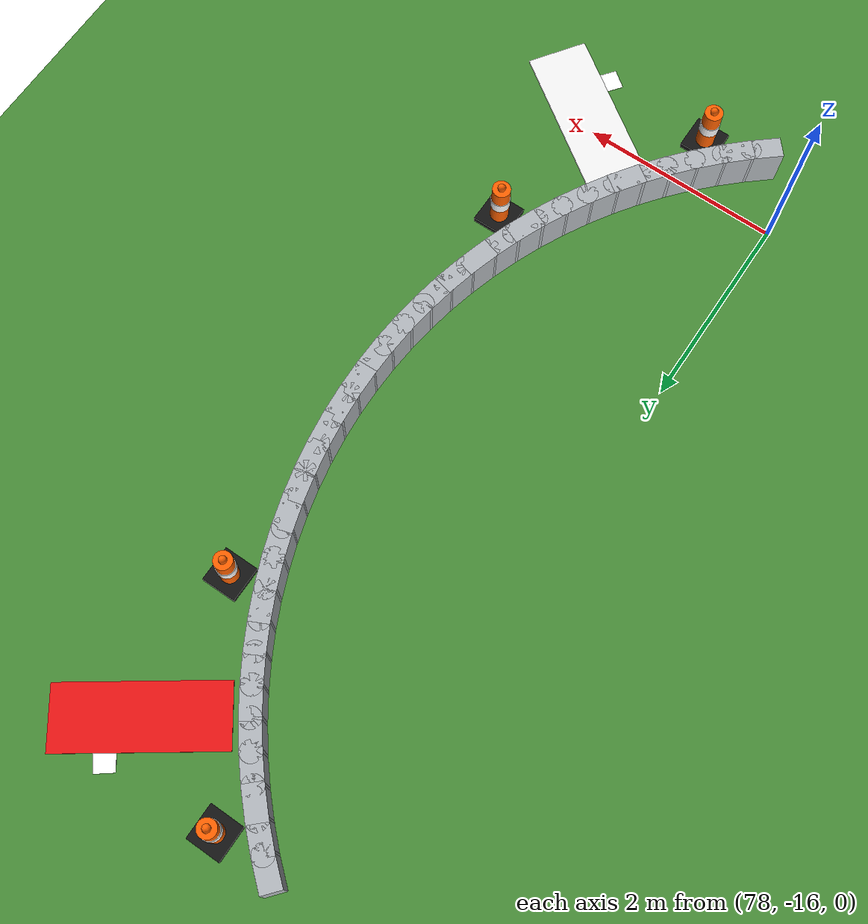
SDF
<sdf version="1.6">
 <world name="sem_silesia_ring_2026">
  <model name="ground_plane">
   <static>true</static>
   <link name="link">
    <collision name="collision">
     <geometry><plane><normal>0 0 1</normal><size>600 600</size></plane></geometry>
     <surface><friction><ode><mu>0.6</mu><mu2>0.6</mu2></ode></friction></surface>
    </collision>
    <visual name="visual">
     <geometry><plane><normal>0 0 1</normal><size>600 600</size></plane></geometry>
     <material><ambient>0.28 0.55 0.22 1</ambient><diffuse>0.28 0.55 0.22 1</diffuse></material>
    </visual>
   </link>
  </model>
  <model name="wl_Ri_s17">
   <static>true</static>
   <pose>80.2361 -16.5178 0.0050 0 0 0.9163</pose>
   <link name="link">
    <visual name="v">
     <geometry><box><size>0.4008 0.2000 0.0040</size></box></geometry>
     <material><ambient>1 1 1 1</ambient><diffuse>1 1 1 1</diffuse></material>
    </visual>
    <collision name="c">
     <geometry><box><size>0.4008 0.2000 0.0040</size></box></geometry>
     <surface><friction><ode><mu>0.9</mu><mu2>0.9</mu2></ode></friction></surface>
    </collision>
   </link>
  </model>
  <model name="wl_Ri_jnt18">
   <static>true</static>
   <pose>80.3395 -16.3794 0.0050 0 0 0</pose>
   <link name="link">
    <visual name="v">
     <geometry><cylinder><radius>0.1000</radius><length>0.0040</length></cylinder></geometry>
     <material><ambient>1 1 1 1</ambient><diffuse>1 1 1 1</diffuse></material>
    </visual>
    <collision name="c">
     <geometry><cylinder><radius>0.1000</radius><length>0.0040</length></cylinder></geometry>
     <surface><friction><ode><mu>0.9</mu><mu2>0.9</mu2></ode></friction></surface>
    </collision>
   </link>
  </model>
  <model name="wl_Ri_s18">
   <static>true</static>
   <pose>80.4392 -16.2383 0.0050 0 0 0.9687</pose>
   <link name="link">
    <visual name="v">
     <geometry><box><size>0.4008 0.2000 0.0040</size></box></geometry>
     <material><ambient>1 1 1 1</ambient><diffuse>1 1 1 1</diffuse></material>
    </visual>
    <collision name="c">
     <geometry><box><size>0.4008 0.2000 0.0040</size></box></geometry>
     <surface><friction><ode><mu>0.9</mu><mu2>0.9</mu2></ode></friction></surface>
    </collision>
   </link>
  </model>
  <model name="wl_Ri_jnt42">
   <static>true</static>
   <pose>80.3395 -8.6206 0.0050 0 0 0</pose>
   <link name="link">
    <visual name="v">
     <geometry><cylinder><radius>0.1000</radius><length>0.0040</length></cylinder></geometry>
     <material><ambient>1 1 1 1</ambient><diffuse>1 1 1 1</diffuse></material>
    </visual>
    <collision name="c">
     <geometry><cylinder><radius>0.1000</radius><length>0.0040</length></cylinder></geometry>
     <surface><friction><ode><mu>0.9</mu><mu2>0.9</mu2></ode></friction></surface>
    </collision>
   </link>
  </model>
  <model name="wl_Ri_s42">
   <static>true</static>
   <pose>80.2361 -8.4822 0.0050 0 0 2.2253</pose>
   <link name="link">
    <visual name="v">
     <geometry><box><size>0.4008 0.2000 0.0040</size></box></geometry>
     <material><ambient>1 1 1 1</ambient><diffuse>1 1 1 1</diffuse></material>
    </visual>
    <collision name="c">
     <geometry><box><size>0.4008 0.2000 0.0040</size></box></geometry>
     <surface><friction><ode><mu>0.9</mu><mu2>0.9</mu2></ode></friction></surface>
    </collision>
   </link>
  </model>
  <model name="kR_in_k3">
   <static>true</static>
   <pose>80.1543 -16.1225 0.0120 0 0 0.9582</pose>
   <link name="link">
    <visual name="v">
     <geometry><box><size>0.6135 1.6000 0.0120</size></box></geometry>
     <material><ambient>0.96 0.96 0.96 1</ambient><diffuse>0.96 0.96 0.96 1</diffuse></material>
    </visual>
    <collision name="c">
     <geometry><box><size>0.6135 1.6000 0.0120</size></box></geometry>
     <surface><friction><ode><mu>0.9</mu><mu2>0.9</mu2></ode></friction></surface>
    </collision>
   </link>
  </model>
  <model name="kR_in_k16">
   <static>true</static>
   <pose>80.1543 -8.8775 0.0120 0 0 2.1834</pose>
   <link name="link">
    <visual name="v">
     <geometry><box><size>0.6135 1.6000 0.0120</size></box></geometry>
     <material><ambient>0.92 0.08 0.08 1</ambient><diffuse>0.92 0.08 0.08 1</diffuse></material>
    </visual>
    <collision name="c">
     <geometry><box><size>0.6135 1.6000 0.0120</size></box></geometry>
     <surface><friction><ode><mu>0.9</mu><mu2>0.9</mu2></ode></friction></surface>
    </collision>
   </link>
  </model>
  <model name="arm_Ri_s13">
   <static>true</static>
   <pose>78.4421 -16.5302 0.2250 0 0 0.7069</pose>
   <link name="link">
    <visual name="v">
     <geometry><box><size>0.3327 0.2000 0.4500</size></box></geometry>
     <material><ambient>0.70 0.72 0.74 1</ambient><diffuse>0.70 0.72 0.74 1</diffuse></material>
    </visual>
    <collision name="c">
     <geometry><box><size>0.3327 0.2000 0.4500</size></box></geometry>
     <surface><friction><ode><mu>0.9</mu><mu2>0.9</mu2></ode></friction></surface>
    </collision>
   </link>
  </model>
  <model name="arm_Ri_jnt14">
   <static>true</static>
   <pose>78.5464 -16.4387 0.2250 0 0 0</pose>
   <link name="link">
    <visual name="v">
     <geometry><cylinder><radius>0.1000</radius><length>0.4500</length></cylinder></geometry>
     <material><ambient>0.70 0.72 0.74 1</ambient><diffuse>0.70 0.72 0.74 1</diffuse></material>
    </visual>
    <collision name="c">
     <geometry><cylinder><radius>0.1000</radius><length>0.4500</length></cylinder></geometry>
     <surface><friction><ode><mu>0.9</mu><mu2>0.9</mu2></ode></friction></surface>
    </collision>
   </link>
  </model>
  <model name="arm_Ri_s14">
   <static>true</static>
   <pose>78.6483 -16.3445 0.2250 0 0 0.7592</pose>
   <link name="link">
    <visual name="v">
     <geometry><box><size>0.3327 0.2000 0.4500</size></box></geometry>
     <material><ambient>0.70 0.72 0.74 1</ambient><diffuse>0.70 0.72 0.74 1</diffuse></material>
    </visual>
    <collision name="c">
     <geometry><box><size>0.3327 0.2000 0.4500</size></box></geometry>
     <surface><friction><ode><mu>0.9</mu><mu2>0.9</mu2></ode></friction></surface>
    </collision>
   </link>
  </model>
  <model name="arm_Ri_jnt15">
   <static>true</static>
   <pose>78.7477 -16.2477 0.2250 0 0 0</pose>
   <link name="link">
    <visual name="v">
     <geometry><cylinder><radius>0.1000</radius><length>0.4500</length></cylinder></geometry>
     <material><ambient>0.70 0.72 0.74 1</ambient><diffuse>0.70 0.72 0.74 1</diffuse></material>
    </visual>
    <collision name="c">
     <geometry><cylinder><radius>0.1000</radius><length>0.4500</length></cylinder></geometry>
     <surface><friction><ode><mu>0.9</mu><mu2>0.9</mu2></ode></friction></surface>
    </collision>
   </link>
  </model>
  <model name="arm_Ri_s15">
   <static>true</static>
   <pose>78.8445 -16.1483 0.2250 0 0 0.8116</pose>
   <link name="link">
    <visual name="v">
     <geometry><box><size>0.3327 0.2000 0.4500</size></box></geometry>
     <material><ambient>0.70 0.72 0.74 1</ambient><diffuse>0.70 0.72 0.74 1</diffuse></material>
    </visual>
    <collision name="c">
     <geometry><box><size>0.3327 0.2000 0.4500</size></box></geometry>
     <surface><friction><ode><mu>0.9</mu><mu2>0.9</mu2></ode></friction></surface>
    </collision>
   </link>
  </model>
  <model name="arm_Ri_jnt16">
   <static>true</static>
   <pose>78.9387 -16.0464 0.2250 0 0 0</pose>
   <link name="link">
    <visual name="v">
     <geometry><cylinder><radius>0.1000</radius><length>0.4500</length></cylinder></geometry>
     <material><ambient>0.70 0.72 0.74 1</ambient><diffuse>0.70 0.72 0.74 1</diffuse></material>
    </visual>
    <collision name="c">
     <geometry><cylinder><radius>0.1000</radius><length>0.4500</length></cylinder></geometry>
     <surface><friction><ode><mu>0.9</mu><mu2>0.9</mu2></ode></friction></surface>
    </collision>
   </link>
  </model>
  <model name="arm_Ri_s16">
   <static>true</static>
   <pose>79.0302 -15.9421 0.2250 0 0 0.8639</pose>
   <link name="link">
    <visual name="v">
     <geometry><box><size>0.3327 0.2000 0.4500</size></box></geometry>
     <material><ambient>0.70 0.72 0.74 1</ambient><diffuse>0.70 0.72 0.74 1</diffuse></material>
    </visual>
    <collision name="c">
     <geometry><box><size>0.3327 0.2000 0.4500</size></box></geometry>
     <surface><friction><ode><mu>0.9</mu><mu2>0.9</mu2></ode></friction></surface>
    </collision>
   </link>
  </model>
  <model name="arm_Ri_jnt17">
   <static>true</static>
   <pose>79.1189 -15.8354 0.2250 0 0 0</pose>
   <link name="link">
    <visual name="v">
     <geometry><cylinder><radius>0.1000</radius><length>0.4500</length></cylinder></geometry>
     <material><ambient>0.70 0.72 0.74 1</ambient><diffuse>0.70 0.72 0.74 1</diffuse></material>
    </visual>
    <collision name="c">
     <geometry><cylinder><radius>0.1000</radius><length>0.4500</length></cylinder></geometry>
     <surface><friction><ode><mu>0.9</mu><mu2>0.9</mu2></ode></friction></surface>
    </collision>
   </link>
  </model>
  <model name="arm_Ri_s17">
   <static>true</static>
   <pose>79.2048 -15.7264 0.2250 0 0 0.9163</pose>
   <link name="link">
    <visual name="v">
     <geometry><box><size>0.3327 0.2000 0.4500</size></box></geometry>
     <material><ambient>0.70 0.72 0.74 1</ambient><diffuse>0.70 0.72 0.74 1</diffuse></material>
    </visual>
    <collision name="c">
     <geometry><box><size>0.3327 0.2000 0.4500</size></box></geometry>
     <surface><friction><ode><mu>0.9</mu><mu2>0.9</mu2></ode></friction></surface>
    </collision>
   </link>
  </model>
  <model name="arm_Ri_jnt18">
   <static>true</static>
   <pose>79.2878 -15.6153 0.2250 0 0 0</pose>
   <link name="link">
    <visual name="v">
     <geometry><cylinder><radius>0.1000</radius><length>0.4500</length></cylinder></geometry>
     <material><ambient>0.70 0.72 0.74 1</ambient><diffuse>0.70 0.72 0.74 1</diffuse></material>
    </visual>
    <collision name="c">
     <geometry><cylinder><radius>0.1000</radius><length>0.4500</length></cylinder></geometry>
     <surface><friction><ode><mu>0.9</mu><mu2>0.9</mu2></ode></friction></surface>
    </collision>
   </link>
  </model>
  <model name="arm_Ri_s18">
   <static>true</static>
   <pose>79.3679 -15.5020 0.2250 0 0 0.9687</pose>
   <link name="link">
    <visual name="v">
     <geometry><box><size>0.3327 0.2000 0.4500</size></box></geometry>
     <material><ambient>0.70 0.72 0.74 1</ambient><diffuse>0.70 0.72 0.74 1</diffuse></material>
    </visual>
    <collision name="c">
     <geometry><box><size>0.3327 0.2000 0.4500</size></box></geometry>
     <surface><friction><ode><mu>0.9</mu><mu2>0.9</mu2></ode></friction></surface>
    </collision>
   </link>
  </model>
  <model name="arm_Ri_jnt19">
   <static>true</static>
   <pose>79.4450 -15.3866 0.2250 0 0 0</pose>
   <link name="link">
    <visual name="v">
     <geometry><cylinder><radius>0.1000</radius><length>0.4500</length></cylinder></geometry>
     <material><ambient>0.70 0.72 0.74 1</ambient><diffuse>0.70 0.72 0.74 1</diffuse></material>
    </visual>
    <collision name="c">
     <geometry><cylinder><radius>0.1000</radius><length>0.4500</length></cylinder></geometry>
     <surface><friction><ode><mu>0.9</mu><mu2>0.9</mu2></ode></friction></surface>
    </collision>
   </link>
  </model>
  <model name="arm_Ri_s19">
   <static>true</static>
   <pose>79.5190 -15.2692 0.2250 0 0 1.0210</pose>
   <link name="link">
    <visual name="v">
     <geometry><box><size>0.3327 0.2000 0.4500</size></box></geometry>
     <material><ambient>0.70 0.72 0.74 1</ambient><diffuse>0.70 0.72 0.74 1</diffuse></material>
    </visual>
    <collision name="c">
     <geometry><box><size>0.3327 0.2000 0.4500</size></box></geometry>
     <surface><friction><ode><mu>0.9</mu><mu2>0.9</mu2></ode></friction></surface>
    </collision>
   </link>
  </model>
  <model name="arm_Ri_jnt20">
   <static>true</static>
   <pose>79.5899 -15.1500 0.2250 0 0 0</pose>
   <link name="link">
    <visual name="v">
     <geometry><cylinder><radius>0.1000</radius><length>0.4500</length></cylinder></geometry>
     <material><ambient>0.70 0.72 0.74 1</ambient><diffuse>0.70 0.72 0.74 1</diffuse></material>
    </visual>
    <collision name="c">
     <geometry><cylinder><radius>0.1000</radius><length>0.4500</length></cylinder></geometry>
     <surface><friction><ode><mu>0.9</mu><mu2>0.9</mu2></ode></friction></surface>
    </collision>
   </link>
  </model>
  <model name="arm_Ri_s20">
   <static>true</static>
   <pose>79.6577 -15.0289 0.2250 0 0 1.0734</pose>
   <link name="link">
    <visual name="v">
     <geometry><box><size>0.3327 0.2000 0.4500</size></box></geometry>
     <material><ambient>0.70 0.72 0.74 1</ambient><diffuse>0.70 0.72 0.74 1</diffuse></material>
    </visual>
    <collision name="c">
     <geometry><box><size>0.3327 0.2000 0.4500</size></box></geometry>
     <surface><friction><ode><mu>0.9</mu><mu2>0.9</mu2></ode></friction></surface>
    </collision>
   </link>
  </model>
  <model name="arm_Ri_jnt21">
   <static>true</static>
   <pose>79.7223 -14.9061 0.2250 0 0 0</pose>
   <link name="link">
    <visual name="v">
     <geometry><cylinder><radius>0.1000</radius><length>0.4500</length></cylinder></geometry>
     <material><ambient>0.70 0.72 0.74 1</ambient><diffuse>0.70 0.72 0.74 1</diffuse></material>
    </visual>
    <collision name="c">
     <geometry><cylinder><radius>0.1000</radius><length>0.4500</length></cylinder></geometry>
     <surface><friction><ode><mu>0.9</mu><mu2>0.9</mu2></ode></friction></surface>
    </collision>
   </link>
  </model>
  <model name="arm_Ri_s21">
   <static>true</static>
   <pose>79.7837 -14.7817 0.2250 0 0 1.1257</pose>
   <link name="link">
    <visual name="v">
     <geometry><box><size>0.3327 0.2000 0.4500</size></box></geometry>
     <material><ambient>0.70 0.72 0.74 1</ambient><diffuse>0.70 0.72 0.74 1</diffuse></material>
    </visual>
    <collision name="c">
     <geometry><box><size>0.3327 0.2000 0.4500</size></box></geometry>
     <surface><friction><ode><mu>0.9</mu><mu2>0.9</mu2></ode></friction></surface>
    </collision>
   </link>
  </model>
  <model name="arm_Ri_jnt22">
   <static>true</static>
   <pose>79.8418 -14.6557 0.2250 0 0 0</pose>
   <link name="link">
    <visual name="v">
     <geometry><cylinder><radius>0.1000</radius><length>0.4500</length></cylinder></geometry>
     <material><ambient>0.70 0.72 0.74 1</ambient><diffuse>0.70 0.72 0.74 1</diffuse></material>
    </visual>
    <collision name="c">
     <geometry><cylinder><radius>0.1000</radius><length>0.4500</length></cylinder></geometry>
     <surface><friction><ode><mu>0.9</mu><mu2>0.9</mu2></ode></friction></surface>
    </collision>
   </link>
  </model>
  <model name="arm_Ri_s22">
   <static>true</static>
   <pose>79.8966 -14.5282 0.2250 0 0 1.1781</pose>
   <link name="link">
    <visual name="v">
     <geometry><box><size>0.3327 0.2000 0.4500</size></box></geometry>
     <material><ambient>0.70 0.72 0.74 1</ambient><diffuse>0.70 0.72 0.74 1</diffuse></material>
    </visual>
    <collision name="c">
     <geometry><box><size>0.3327 0.2000 0.4500</size></box></geometry>
     <surface><friction><ode><mu>0.9</mu><mu2>0.9</mu2></ode></friction></surface>
    </collision>
   </link>
  </model>
  <model name="arm_Ri_jnt23">
   <static>true</static>
   <pose>79.9480 -14.3994 0.2250 0 0 0</pose>
   <link name="link">
    <visual name="v">
     <geometry><cylinder><radius>0.1000</radius><length>0.4500</length></cylinder></geometry>
     <material><ambient>0.70 0.72 0.74 1</ambient><diffuse>0.70 0.72 0.74 1</diffuse></material>
    </visual>
    <collision name="c">
     <geometry><cylinder><radius>0.1000</radius><length>0.4500</length></cylinder></geometry>
     <surface><friction><ode><mu>0.9</mu><mu2>0.9</mu2></ode></friction></surface>
    </collision>
   </link>
  </model>
  <model name="arm_Ri_s23">
   <static>true</static>
   <pose>79.9960 -14.2692 0.2250 0 0 1.2305</pose>
   <link name="link">
    <visual name="v">
     <geometry><box><size>0.3327 0.2000 0.4500</size></box></geometry>
     <material><ambient>0.70 0.72 0.74 1</ambient><diffuse>0.70 0.72 0.74 1</diffuse></material>
    </visual>
    <collision name="c">
     <geometry><box><size>0.3327 0.2000 0.4500</size></box></geometry>
     <surface><friction><ode><mu>0.9</mu><mu2>0.9</mu2></ode></friction></surface>
    </collision>
   </link>
  </model>
  <model name="arm_Ri_jnt24">
   <static>true</static>
   <pose>80.0406 -14.1378 0.2250 0 0 0</pose>
   <link name="link">
    <visual name="v">
     <geometry><cylinder><radius>0.1000</radius><length>0.4500</length></cylinder></geometry>
     <material><ambient>0.70 0.72 0.74 1</ambient><diffuse>0.70 0.72 0.74 1</diffuse></material>
    </visual>
    <collision name="c">
     <geometry><cylinder><radius>0.1000</radius><length>0.4500</length></cylinder></geometry>
     <surface><friction><ode><mu>0.9</mu><mu2>0.9</mu2></ode></friction></surface>
    </collision>
   </link>
  </model>
  <model name="arm_Ri_s24">
   <static>true</static>
   <pose>80.0817 -14.0053 0.2250 0 0 1.2828</pose>
   <link name="link">
    <visual name="v">
     <geometry><box><size>0.3327 0.2000 0.4500</size></box></geometry>
     <material><ambient>0.70 0.72 0.74 1</ambient><diffuse>0.70 0.72 0.74 1</diffuse></material>
    </visual>
    <collision name="c">
     <geometry><box><size>0.3327 0.2000 0.4500</size></box></geometry>
     <surface><friction><ode><mu>0.9</mu><mu2>0.9</mu2></ode></friction></surface>
    </collision>
   </link>
  </model>
  <model name="arm_Ri_jnt25">
   <static>true</static>
   <pose>80.1194 -13.8717 0.2250 0 0 0</pose>
   <link name="link">
    <visual name="v">
     <geometry><cylinder><radius>0.1000</radius><length>0.4500</length></cylinder></geometry>
     <material><ambient>0.70 0.72 0.74 1</ambient><diffuse>0.70 0.72 0.74 1</diffuse></material>
    </visual>
    <collision name="c">
     <geometry><cylinder><radius>0.1000</radius><length>0.4500</length></cylinder></geometry>
     <surface><friction><ode><mu>0.9</mu><mu2>0.9</mu2></ode></friction></surface>
    </collision>
   </link>
  </model>
  <model name="arm_Ri_s25">
   <static>true</static>
   <pose>80.1536 -13.7373 0.2250 0 0 1.3352</pose>
   <link name="link">
    <visual name="v">
     <geometry><box><size>0.3327 0.2000 0.4500</size></box></geometry>
     <material><ambient>0.70 0.72 0.74 1</ambient><diffuse>0.70 0.72 0.74 1</diffuse></material>
    </visual>
    <collision name="c">
     <geometry><box><size>0.3327 0.2000 0.4500</size></box></geometry>
     <surface><friction><ode><mu>0.9</mu><mu2>0.9</mu2></ode></friction></surface>
    </collision>
   </link>
  </model>
  <model name="arm_Ri_jnt26">
   <static>true</static>
   <pose>80.1842 -13.6019 0.2250 0 0 0</pose>
   <link name="link">
    <visual name="v">
     <geometry><cylinder><radius>0.1000</radius><length>0.4500</length></cylinder></geometry>
     <material><ambient>0.70 0.72 0.74 1</ambient><diffuse>0.70 0.72 0.74 1</diffuse></material>
    </visual>
    <collision name="c">
     <geometry><cylinder><radius>0.1000</radius><length>0.4500</length></cylinder></geometry>
     <surface><friction><ode><mu>0.9</mu><mu2>0.9</mu2></ode></friction></surface>
    </collision>
   </link>
  </model>
  <model name="arm_Ri_s26">
   <static>true</static>
   <pose>80.2113 -13.4658 0.2250 0 0 1.3875</pose>
   <link name="link">
    <visual name="v">
     <geometry><box><size>0.3327 0.2000 0.4500</size></box></geometry>
     <material><ambient>0.70 0.72 0.74 1</ambient><diffuse>0.70 0.72 0.74 1</diffuse></material>
    </visual>
    <collision name="c">
     <geometry><box><size>0.3327 0.2000 0.4500</size></box></geometry>
     <surface><friction><ode><mu>0.9</mu><mu2>0.9</mu2></ode></friction></surface>
    </collision>
   </link>
  </model>
  <model name="arm_Ri_jnt27">
   <static>true</static>
   <pose>80.2347 -13.3291 0.2250 0 0 0</pose>
   <link name="link">
    <visual name="v">
     <geometry><cylinder><radius>0.1000</radius><length>0.4500</length></cylinder></geometry>
     <material><ambient>0.70 0.72 0.74 1</ambient><diffuse>0.70 0.72 0.74 1</diffuse></material>
    </visual>
    <collision name="c">
     <geometry><cylinder><radius>0.1000</radius><length>0.4500</length></cylinder></geometry>
     <surface><friction><ode><mu>0.9</mu><mu2>0.9</mu2></ode></friction></surface>
    </collision>
   </link>
  </model>
  <model name="arm_Ri_s27">
   <static>true</static>
   <pose>80.2547 -13.1918 0.2250 0 0 1.4399</pose>
   <link name="link">
    <visual name="v">
     <geometry><box><size>0.3327 0.2000 0.4500</size></box></geometry>
     <material><ambient>0.70 0.72 0.74 1</ambient><diffuse>0.70 0.72 0.74 1</diffuse></material>
    </visual>
    <collision name="c">
     <geometry><box><size>0.3327 0.2000 0.4500</size></box></geometry>
     <surface><friction><ode><mu>0.9</mu><mu2>0.9</mu2></ode></friction></surface>
    </collision>
   </link>
  </model>
  <model name="arm_Ri_jnt28">
   <static>true</static>
   <pose>80.2710 -13.0540 0.2250 0 0 0</pose>
   <link name="link">
    <visual name="v">
     <geometry><cylinder><radius>0.1000</radius><length>0.4500</length></cylinder></geometry>
     <material><ambient>0.70 0.72 0.74 1</ambient><diffuse>0.70 0.72 0.74 1</diffuse></material>
    </visual>
    <collision name="c">
     <geometry><cylinder><radius>0.1000</radius><length>0.4500</length></cylinder></geometry>
     <surface><friction><ode><mu>0.9</mu><mu2>0.9</mu2></ode></friction></surface>
    </collision>
   </link>
  </model>
  <model name="arm_Ri_s28">
   <static>true</static>
   <pose>80.2837 -12.9158 0.2250 0 0 1.4923</pose>
   <link name="link">
    <visual name="v">
     <geometry><box><size>0.3327 0.2000 0.4500</size></box></geometry>
     <material><ambient>0.70 0.72 0.74 1</ambient><diffuse>0.70 0.72 0.74 1</diffuse></material>
    </visual>
    <collision name="c">
     <geometry><box><size>0.3327 0.2000 0.4500</size></box></geometry>
     <surface><friction><ode><mu>0.9</mu><mu2>0.9</mu2></ode></friction></surface>
    </collision>
   </link>
  </model>
  <model name="arm_Ri_jnt29">
   <static>true</static>
   <pose>80.2927 -12.7774 0.2250 0 0 0</pose>
   <link name="link">
    <visual name="v">
     <geometry><cylinder><radius>0.1000</radius><length>0.4500</length></cylinder></geometry>
     <material><ambient>0.70 0.72 0.74 1</ambient><diffuse>0.70 0.72 0.74 1</diffuse></material>
    </visual>
    <collision name="c">
     <geometry><cylinder><radius>0.1000</radius><length>0.4500</length></cylinder></geometry>
     <surface><friction><ode><mu>0.9</mu><mu2>0.9</mu2></ode></friction></surface>
    </collision>
   </link>
  </model>
  <model name="arm_Ri_s29">
   <static>true</static>
   <pose>80.2982 -12.6387 0.2250 0 0 1.5446</pose>
   <link name="link">
    <visual name="v">
     <geometry><box><size>0.3327 0.2000 0.4500</size></box></geometry>
     <material><ambient>0.70 0.72 0.74 1</ambient><diffuse>0.70 0.72 0.74 1</diffuse></material>
    </visual>
    <collision name="c">
     <geometry><box><size>0.3327 0.2000 0.4500</size></box></geometry>
     <surface><friction><ode><mu>0.9</mu><mu2>0.9</mu2></ode></friction></surface>
    </collision>
   </link>
  </model>
  <model name="arm_Ri_jnt30">
   <static>true</static>
   <pose>80.3000 -12.5000 0.2250 0 0 0</pose>
   <link name="link">
    <visual name="v">
     <geometry><cylinder><radius>0.1000</radius><length>0.4500</length></cylinder></geometry>
     <material><ambient>0.70 0.72 0.74 1</ambient><diffuse>0.70 0.72 0.74 1</diffuse></material>
    </visual>
    <collision name="c">
     <geometry><cylinder><radius>0.1000</radius><length>0.4500</length></cylinder></geometry>
     <surface><friction><ode><mu>0.9</mu><mu2>0.9</mu2></ode></friction></surface>
    </collision>
   </link>
  </model>
  <model name="arm_Ri_s30">
   <static>true</static>
   <pose>80.2982 -12.3613 0.2250 0 0 1.5970</pose>
   <link name="link">
    <visual name="v">
     <geometry><box><size>0.3327 0.2000 0.4500</size></box></geometry>
     <material><ambient>0.70 0.72 0.74 1</ambient><diffuse>0.70 0.72 0.74 1</diffuse></material>
    </visual>
    <collision name="c">
     <geometry><box><size>0.3327 0.2000 0.4500</size></box></geometry>
     <surface><friction><ode><mu>0.9</mu><mu2>0.9</mu2></ode></friction></surface>
    </collision>
   </link>
  </model>
  <model name="arm_Ri_jnt31">
   <static>true</static>
   <pose>80.2927 -12.2226 0.2250 0 0 0</pose>
   <link name="link">
    <visual name="v">
     <geometry><cylinder><radius>0.1000</radius><length>0.4500</length></cylinder></geometry>
     <material><ambient>0.70 0.72 0.74 1</ambient><diffuse>0.70 0.72 0.74 1</diffuse></material>
    </visual>
    <collision name="c">
     <geometry><cylinder><radius>0.1000</radius><length>0.4500</length></cylinder></geometry>
     <surface><friction><ode><mu>0.9</mu><mu2>0.9</mu2></ode></friction></surface>
    </collision>
   </link>
  </model>
  <model name="arm_Ri_s31">
   <static>true</static>
   <pose>80.2837 -12.0842 0.2250 0 0 1.6493</pose>
   <link name="link">
    <visual name="v">
     <geometry><box><size>0.3327 0.2000 0.4500</size></box></geometry>
     <material><ambient>0.70 0.72 0.74 1</ambient><diffuse>0.70 0.72 0.74 1</diffuse></material>
    </visual>
    <collision name="c">
     <geometry><box><size>0.3327 0.2000 0.4500</size></box></geometry>
     <surface><friction><ode><mu>0.9</mu><mu2>0.9</mu2></ode></friction></surface>
    </collision>
   </link>
  </model>
  <model name="arm_Ri_jnt32">
   <static>true</static>
   <pose>80.2710 -11.9460 0.2250 0 0 0</pose>
   <link name="link">
    <visual name="v">
     <geometry><cylinder><radius>0.1000</radius><length>0.4500</length></cylinder></geometry>
     <material><ambient>0.70 0.72 0.74 1</ambient><diffuse>0.70 0.72 0.74 1</diffuse></material>
    </visual>
    <collision name="c">
     <geometry><cylinder><radius>0.1000</radius><length>0.4500</length></cylinder></geometry>
     <surface><friction><ode><mu>0.9</mu><mu2>0.9</mu2></ode></friction></surface>
    </collision>
   </link>
  </model>
  <model name="arm_Ri_s32">
   <static>true</static>
   <pose>80.2547 -11.8082 0.2250 0 0 1.7017</pose>
   <link name="link">
    <visual name="v">
     <geometry><box><size>0.3327 0.2000 0.4500</size></box></geometry>
     <material><ambient>0.70 0.72 0.74 1</ambient><diffuse>0.70 0.72 0.74 1</diffuse></material>
    </visual>
    <collision name="c">
     <geometry><box><size>0.3327 0.2000 0.4500</size></box></geometry>
     <surface><friction><ode><mu>0.9</mu><mu2>0.9</mu2></ode></friction></surface>
    </collision>
   </link>
  </model>
  <model name="arm_Ri_jnt33">
   <static>true</static>
   <pose>80.2347 -11.6709 0.2250 0 0 0</pose>
   <link name="link">
    <visual name="v">
     <geometry><cylinder><radius>0.1000</radius><length>0.4500</length></cylinder></geometry>
     <material><ambient>0.70 0.72 0.74 1</ambient><diffuse>0.70 0.72 0.74 1</diffuse></material>
    </visual>
    <collision name="c">
     <geometry><cylinder><radius>0.1000</radius><length>0.4500</length></cylinder></geometry>
     <surface><friction><ode><mu>0.9</mu><mu2>0.9</mu2></ode></friction></surface>
    </collision>
   </link>
  </model>
  <model name="arm_Ri_s33">
   <static>true</static>
   <pose>80.2113 -11.5342 0.2250 0 0 1.7541</pose>
   <link name="link">
    <visual name="v">
     <geometry><box><size>0.3327 0.2000 0.4500</size></box></geometry>
     <material><ambient>0.70 0.72 0.74 1</ambient><diffuse>0.70 0.72 0.74 1</diffuse></material>
    </visual>
    <collision name="c">
     <geometry><box><size>0.3327 0.2000 0.4500</size></box></geometry>
     <surface><friction><ode><mu>0.9</mu><mu2>0.9</mu2></ode></friction></surface>
    </collision>
   </link>
  </model>
  <model name="arm_Ri_jnt34">
   <static>true</static>
   <pose>80.1842 -11.3981 0.2250 0 0 0</pose>
   <link name="link">
    <visual name="v">
     <geometry><cylinder><radius>0.1000</radius><length>0.4500</length></cylinder></geometry>
     <material><ambient>0.70 0.72 0.74 1</ambient><diffuse>0.70 0.72 0.74 1</diffuse></material>
    </visual>
    <collision name="c">
     <geometry><cylinder><radius>0.1000</radius><length>0.4500</length></cylinder></geometry>
     <surface><friction><ode><mu>0.9</mu><mu2>0.9</mu2></ode></friction></surface>
    </collision>
   </link>
  </model>
  <model name="arm_Ri_s34">
   <static>true</static>
   <pose>80.1536 -11.2627 0.2250 0 0 1.8064</pose>
   <link name="link">
    <visual name="v">
     <geometry><box><size>0.3327 0.2000 0.4500</size></box></geometry>
     <material><ambient>0.70 0.72 0.74 1</ambient><diffuse>0.70 0.72 0.74 1</diffuse></material>
    </visual>
    <collision name="c">
     <geometry><box><size>0.3327 0.2000 0.4500</size></box></geometry>
     <surface><friction><ode><mu>0.9</mu><mu2>0.9</mu2></ode></friction></surface>
    </collision>
   </link>
  </model>
  <model name="arm_Ri_jnt35">
   <static>true</static>
   <pose>80.1194 -11.1283 0.2250 0 0 0</pose>
   <link name="link">
    <visual name="v">
     <geometry><cylinder><radius>0.1000</radius><length>0.4500</length></cylinder></geometry>
     <material><ambient>0.70 0.72 0.74 1</ambient><diffuse>0.70 0.72 0.74 1</diffuse></material>
    </visual>
    <collision name="c">
     <geometry><cylinder><radius>0.1000</radius><length>0.4500</length></cylinder></geometry>
     <surface><friction><ode><mu>0.9</mu><mu2>0.9</mu2></ode></friction></surface>
    </collision>
   </link>
  </model>
  <model name="arm_Ri_s35">
   <static>true</static>
   <pose>80.0817 -10.9947 0.2250 0 0 1.8588</pose>
   <link name="link">
    <visual name="v">
     <geometry><box><size>0.3327 0.2000 0.4500</size></box></geometry>
     <material><ambient>0.70 0.72 0.74 1</ambient><diffuse>0.70 0.72 0.74 1</diffuse></material>
    </visual>
    <collision name="c">
     <geometry><box><size>0.3327 0.2000 0.4500</size></box></geometry>
     <surface><friction><ode><mu>0.9</mu><mu2>0.9</mu2></ode></friction></surface>
    </collision>
   </link>
  </model>
  <model name="arm_Ri_jnt36">
   <static>true</static>
   <pose>80.0406 -10.8622 0.2250 0 0 0</pose>
   <link name="link">
    <visual name="v">
     <geometry><cylinder><radius>0.1000</radius><length>0.4500</length></cylinder></geometry>
     <material><ambient>0.70 0.72 0.74 1</ambient><diffuse>0.70 0.72 0.74 1</diffuse></material>
    </visual>
    <collision name="c">
     <geometry><cylinder><radius>0.1000</radius><length>0.4500</length></cylinder></geometry>
     <surface><friction><ode><mu>0.9</mu><mu2>0.9</mu2></ode></friction></surface>
    </collision>
   </link>
  </model>
  <model name="arm_Ri_s36">
   <static>true</static>
   <pose>79.9960 -10.7308 0.2250 0 0 1.9111</pose>
   <link name="link">
    <visual name="v">
     <geometry><box><size>0.3327 0.2000 0.4500</size></box></geometry>
     <material><ambient>0.70 0.72 0.74 1</ambient><diffuse>0.70 0.72 0.74 1</diffuse></material>
    </visual>
    <collision name="c">
     <geometry><box><size>0.3327 0.2000 0.4500</size></box></geometry>
     <surface><friction><ode><mu>0.9</mu><mu2>0.9</mu2></ode></friction></surface>
    </collision>
   </link>
  </model>
  <model name="arm_Ri_jnt37">
   <static>true</static>
   <pose>79.9480 -10.6006 0.2250 0 0 0</pose>
   <link name="link">
    <visual name="v">
     <geometry><cylinder><radius>0.1000</radius><length>0.4500</length></cylinder></geometry>
     <material><ambient>0.70 0.72 0.74 1</ambient><diffuse>0.70 0.72 0.74 1</diffuse></material>
    </visual>
    <collision name="c">
     <geometry><cylinder><radius>0.1000</radius><length>0.4500</length></cylinder></geometry>
     <surface><friction><ode><mu>0.9</mu><mu2>0.9</mu2></ode></friction></surface>
    </collision>
   </link>
  </model>
  <model name="arm_Ri_s37">
   <static>true</static>
   <pose>79.8966 -10.4718 0.2250 0 0 1.9635</pose>
   <link name="link">
    <visual name="v">
     <geometry><box><size>0.3327 0.2000 0.4500</size></box></geometry>
     <material><ambient>0.70 0.72 0.74 1</ambient><diffuse>0.70 0.72 0.74 1</diffuse></material>
    </visual>
    <collision name="c">
     <geometry><box><size>0.3327 0.2000 0.4500</size></box></geometry>
     <surface><friction><ode><mu>0.9</mu><mu2>0.9</mu2></ode></friction></surface>
    </collision>
   </link>
  </model>
  <model name="arm_Ri_jnt38">
   <static>true</static>
   <pose>79.8418 -10.3443 0.2250 0 0 0</pose>
   <link name="link">
    <visual name="v">
     <geometry><cylinder><radius>0.1000</radius><length>0.4500</length></cylinder></geometry>
     <material><ambient>0.70 0.72 0.74 1</ambient><diffuse>0.70 0.72 0.74 1</diffuse></material>
    </visual>
    <collision name="c">
     <geometry><cylinder><radius>0.1000</radius><length>0.4500</length></cylinder></geometry>
     <surface><friction><ode><mu>0.9</mu><mu2>0.9</mu2></ode></friction></surface>
    </collision>
   </link>
  </model>
  <model name="arm_Ri_s38">
   <static>true</static>
   <pose>79.7837 -10.2183 0.2250 0 0 2.0159</pose>
   <link name="link">
    <visual name="v">
     <geometry><box><size>0.3327 0.2000 0.4500</size></box></geometry>
     <material><ambient>0.70 0.72 0.74 1</ambient><diffuse>0.70 0.72 0.74 1</diffuse></material>
    </visual>
    <collision name="c">
     <geometry><box><size>0.3327 0.2000 0.4500</size></box></geometry>
     <surface><friction><ode><mu>0.9</mu><mu2>0.9</mu2></ode></friction></surface>
    </collision>
   </link>
  </model>
  <model name="arm_Ri_jnt39">
   <static>true</static>
   <pose>79.7223 -10.0939 0.2250 0 0 0</pose>
   <link name="link">
    <visual name="v">
     <geometry><cylinder><radius>0.1000</radius><length>0.4500</length></cylinder></geometry>
     <material><ambient>0.70 0.72 0.74 1</ambient><diffuse>0.70 0.72 0.74 1</diffuse></material>
    </visual>
    <collision name="c">
     <geometry><cylinder><radius>0.1000</radius><length>0.4500</length></cylinder></geometry>
     <surface><friction><ode><mu>0.9</mu><mu2>0.9</mu2></ode></friction></surface>
    </collision>
   </link>
  </model>
  <model name="arm_Ri_s39">
   <static>true</static>
   <pose>79.6577 -9.9711 0.2250 0 0 2.0682</pose>
   <link name="link">
    <visual name="v">
     <geometry><box><size>0.3327 0.2000 0.4500</size></box></geometry>
     <material><ambient>0.70 0.72 0.74 1</ambient><diffuse>0.70 0.72 0.74 1</diffuse></material>
    </visual>
    <collision name="c">
     <geometry><box><size>0.3327 0.2000 0.4500</size></box></geometry>
     <surface><friction><ode><mu>0.9</mu><mu2>0.9</mu2></ode></friction></surface>
    </collision>
   </link>
  </model>
  <model name="arm_Ri_jnt40">
   <static>true</static>
   <pose>79.5899 -9.8500 0.2250 0 0 0</pose>
   <link name="link">
    <visual name="v">
     <geometry><cylinder><radius>0.1000</radius><length>0.4500</length></cylinder></geometry>
     <material><ambient>0.70 0.72 0.74 1</ambient><diffuse>0.70 0.72 0.74 1</diffuse></material>
    </visual>
    <collision name="c">
     <geometry><cylinder><radius>0.1000</radius><length>0.4500</length></cylinder></geometry>
     <surface><friction><ode><mu>0.9</mu><mu2>0.9</mu2></ode></friction></surface>
    </collision>
   </link>
  </model>
  <model name="arm_Ri_s40">
   <static>true</static>
   <pose>79.5190 -9.7308 0.2250 0 0 2.1206</pose>
   <link name="link">
    <visual name="v">
     <geometry><box><size>0.3327 0.2000 0.4500</size></box></geometry>
     <material><ambient>0.70 0.72 0.74 1</ambient><diffuse>0.70 0.72 0.74 1</diffuse></material>
    </visual>
    <collision name="c">
     <geometry><box><size>0.3327 0.2000 0.4500</size></box></geometry>
     <surface><friction><ode><mu>0.9</mu><mu2>0.9</mu2></ode></friction></surface>
    </collision>
   </link>
  </model>
  <model name="arm_Ri_jnt41">
   <static>true</static>
   <pose>79.4450 -9.6134 0.2250 0 0 0</pose>
   <link name="link">
    <visual name="v">
     <geometry><cylinder><radius>0.1000</radius><length>0.4500</length></cylinder></geometry>
     <material><ambient>0.70 0.72 0.74 1</ambient><diffuse>0.70 0.72 0.74 1</diffuse></material>
    </visual>
    <collision name="c">
     <geometry><cylinder><radius>0.1000</radius><length>0.4500</length></cylinder></geometry>
     <surface><friction><ode><mu>0.9</mu><mu2>0.9</mu2></ode></friction></surface>
    </collision>
   </link>
  </model>
  <model name="arm_Ri_s41">
   <static>true</static>
   <pose>79.3679 -9.4980 0.2250 0 0 2.1729</pose>
   <link name="link">
    <visual name="v">
     <geometry><box><size>0.3327 0.2000 0.4500</size></box></geometry>
     <material><ambient>0.70 0.72 0.74 1</ambient><diffuse>0.70 0.72 0.74 1</diffuse></material>
    </visual>
    <collision name="c">
     <geometry><box><size>0.3327 0.2000 0.4500</size></box></geometry>
     <surface><friction><ode><mu>0.9</mu><mu2>0.9</mu2></ode></friction></surface>
    </collision>
   </link>
  </model>
  <model name="arm_Ri_jnt42">
   <static>true</static>
   <pose>79.2878 -9.3847 0.2250 0 0 0</pose>
   <link name="link">
    <visual name="v">
     <geometry><cylinder><radius>0.1000</radius><length>0.4500</length></cylinder></geometry>
     <material><ambient>0.70 0.72 0.74 1</ambient><diffuse>0.70 0.72 0.74 1</diffuse></material>
    </visual>
    <collision name="c">
     <geometry><cylinder><radius>0.1000</radius><length>0.4500</length></cylinder></geometry>
     <surface><friction><ode><mu>0.9</mu><mu2>0.9</mu2></ode></friction></surface>
    </collision>
   </link>
  </model>
  <model name="arm_Ri_s42">
   <static>true</static>
   <pose>79.2048 -9.2736 0.2250 0 0 2.2253</pose>
   <link name="link">
    <visual name="v">
     <geometry><box><size>0.3327 0.2000 0.4500</size></box></geometry>
     <material><ambient>0.70 0.72 0.74 1</ambient><diffuse>0.70 0.72 0.74 1</diffuse></material>
    </visual>
    <collision name="c">
     <geometry><box><size>0.3327 0.2000 0.4500</size></box></geometry>
     <surface><friction><ode><mu>0.9</mu><mu2>0.9</mu2></ode></friction></surface>
    </collision>
   </link>
  </model>
  <model name="arm_Ri_jnt43">
   <static>true</static>
   <pose>79.1189 -9.1646 0.2250 0 0 0</pose>
   <link name="link">
    <visual name="v">
     <geometry><cylinder><radius>0.1000</radius><length>0.4500</length></cylinder></geometry>
     <material><ambient>0.70 0.72 0.74 1</ambient><diffuse>0.70 0.72 0.74 1</diffuse></material>
    </visual>
    <collision name="c">
     <geometry><cylinder><radius>0.1000</radius><length>0.4500</length></cylinder></geometry>
     <surface><friction><ode><mu>0.9</mu><mu2>0.9</mu2></ode></friction></surface>
    </collision>
   </link>
  </model>
  <model name="arm_Ri_s43">
   <static>true</static>
   <pose>79.0302 -9.0579 0.2250 0 0 2.2777</pose>
   <link name="link">
    <visual name="v">
     <geometry><box><size>0.3327 0.2000 0.4500</size></box></geometry>
     <material><ambient>0.70 0.72 0.74 1</ambient><diffuse>0.70 0.72 0.74 1</diffuse></material>
    </visual>
    <collision name="c">
     <geometry><box><size>0.3327 0.2000 0.4500</size></box></geometry>
     <surface><friction><ode><mu>0.9</mu><mu2>0.9</mu2></ode></friction></surface>
    </collision>
   </link>
  </model>
  <model name="arm_Ri_jnt44">
   <static>true</static>
   <pose>78.9387 -8.9536 0.2250 0 0 0</pose>
   <link name="link">
    <visual name="v">
     <geometry><cylinder><radius>0.1000</radius><length>0.4500</length></cylinder></geometry>
     <material><ambient>0.70 0.72 0.74 1</ambient><diffuse>0.70 0.72 0.74 1</diffuse></material>
    </visual>
    <collision name="c">
     <geometry><cylinder><radius>0.1000</radius><length>0.4500</length></cylinder></geometry>
     <surface><friction><ode><mu>0.9</mu><mu2>0.9</mu2></ode></friction></surface>
    </collision>
   </link>
  </model>
  <model name="arm_Ri_s44">
   <static>true</static>
   <pose>78.8445 -8.8517 0.2250 0 0 2.3300</pose>
   <link name="link">
    <visual name="v">
     <geometry><box><size>0.3327 0.2000 0.4500</size></box></geometry>
     <material><ambient>0.70 0.72 0.74 1</ambient><diffuse>0.70 0.72 0.74 1</diffuse></material>
    </visual>
    <collision name="c">
     <geometry><box><size>0.3327 0.2000 0.4500</size></box></geometry>
     <surface><friction><ode><mu>0.9</mu><mu2>0.9</mu2></ode></friction></surface>
    </collision>
   </link>
  </model>
  <model name="arm_Ri_jnt45">
   <static>true</static>
   <pose>78.7477 -8.7523 0.2250 0 0 0</pose>
   <link name="link">
    <visual name="v">
     <geometry><cylinder><radius>0.1000</radius><length>0.4500</length></cylinder></geometry>
     <material><ambient>0.70 0.72 0.74 1</ambient><diffuse>0.70 0.72 0.74 1</diffuse></material>
    </visual>
    <collision name="c">
     <geometry><cylinder><radius>0.1000</radius><length>0.4500</length></cylinder></geometry>
     <surface><friction><ode><mu>0.9</mu><mu2>0.9</mu2></ode></friction></surface>
    </collision>
   </link>
  </model>
  <model name="arm_Ri_s45">
   <static>true</static>
   <pose>78.6483 -8.6555 0.2250 0 0 2.3824</pose>
   <link name="link">
    <visual name="v">
     <geometry><box><size>0.3327 0.2000 0.4500</size></box></geometry>
     <material><ambient>0.70 0.72 0.74 1</ambient><diffuse>0.70 0.72 0.74 1</diffuse></material>
    </visual>
    <collision name="c">
     <geometry><box><size>0.3327 0.2000 0.4500</size></box></geometry>
     <surface><friction><ode><mu>0.9</mu><mu2>0.9</mu2></ode></friction></surface>
    </collision>
   </link>
  </model>
  <model name="arm_Ri_jnt46">
   <static>true</static>
   <pose>78.5464 -8.5613 0.2250 0 0 0</pose>
   <link name="link">
    <visual name="v">
     <geometry><cylinder><radius>0.1000</radius><length>0.4500</length></cylinder></geometry>
     <material><ambient>0.70 0.72 0.74 1</ambient><diffuse>0.70 0.72 0.74 1</diffuse></material>
    </visual>
    <collision name="c">
     <geometry><cylinder><radius>0.1000</radius><length>0.4500</length></cylinder></geometry>
     <surface><friction><ode><mu>0.9</mu><mu2>0.9</mu2></ode></friction></surface>
    </collision>
   </link>
  </model>
  <model name="arm_Ri_s46">
   <static>true</static>
   <pose>78.4421 -8.4698 0.2250 0 0 2.4347</pose>
   <link name="link">
    <visual name="v">
     <geometry><box><size>0.3327 0.2000 0.4500</size></box></geometry>
     <material><ambient>0.70 0.72 0.74 1</ambient><diffuse>0.70 0.72 0.74 1</diffuse></material>
    </visual>
    <collision name="c">
     <geometry><box><size>0.3327 0.2000 0.4500</size></box></geometry>
     <surface><friction><ode><mu>0.9</mu><mu2>0.9</mu2></ode></friction></surface>
    </collision>
   </link>
  </model>
  <model name="cn_Ri_2">
   <static>true</static>
   <pose>79.0305 -16.5305 0 0 0 0</pose>
   <link name="link">
    <visual name="base">
     <pose>0 0 0.03 0 0 0</pose>
     <geometry><box><size>0.35 0.35 0.06</size></box></geometry>
     <material><ambient>0.08 0.08 0.08 1</ambient><diffuse>0.08 0.08 0.08 1</diffuse></material>
    </visual>
    <visual name="body">
     <pose>0 0 0.30 0 0 0</pose>
     <geometry><cylinder><radius>0.09</radius><length>0.50</length></cylinder></geometry>
     <material><ambient>1.0 0.38 0.0 1</ambient><diffuse>1.0 0.38 0.0 1</diffuse></material>
    </visual>
    <visual name="stripe">
     <pose>0 0 0.32 0 0 0</pose>
     <geometry><cylinder><radius>0.095</radius><length>0.12</length></cylinder></geometry>
     <material><ambient>1 1 1 1</ambient><diffuse>1 1 1 1</diffuse></material>
    </visual>
    <visual name="tip">
     <pose>0 0 0.57 0 0 0</pose>
     <geometry><sphere><radius>0.04</radius></sphere></geometry>
     <material><ambient>1.0 0.38 0.0 1</ambient><diffuse>1.0 0.38 0.0 1</diffuse></material>
    </visual>
    <collision name="c">
     <pose>0 0 0.28 0 0 0</pose>
     <geometry><cylinder><radius>0.09</radius><length>0.56</length></cylinder></geometry>
    </collision>
   </link>
  </model>
  <model name="cn_Ri_3">
   <static>true</static>
   <pose>80.2661 -14.6813 0 0 0 0</pose>
   <link name="link">
    <visual name="base">
     <pose>0 0 0.03 0 0 0</pose>
     <geometry><box><size>0.35 0.35 0.06</size></box></geometry>
     <material><ambient>0.08 0.08 0.08 1</ambient><diffuse>0.08 0.08 0.08 1</diffuse></material>
    </visual>
    <visual name="body">
     <pose>0 0 0.30 0 0 0</pose>
     <geometry><cylinder><radius>0.09</radius><length>0.50</length></cylinder></geometry>
     <material><ambient>1.0 0.38 0.0 1</ambient><diffuse>1.0 0.38 0.0 1</diffuse></material>
    </visual>
    <visual name="stripe">
     <pose>0 0 0.32 0 0 0</pose>
     <geometry><cylinder><radius>0.095</radius><length>0.12</length></cylinder></geometry>
     <material><ambient>1 1 1 1</ambient><diffuse>1 1 1 1</diffuse></material>
    </visual>
    <visual name="tip">
     <pose>0 0 0.57 0 0 0</pose>
     <geometry><sphere><radius>0.04</radius></sphere></geometry>
     <material><ambient>1.0 0.38 0.0 1</ambient><diffuse>1.0 0.38 0.0 1</diffuse></material>
    </visual>
    <collision name="c">
     <pose>0 0 0.28 0 0 0</pose>
     <geometry><cylinder><radius>0.09</radius><length>0.56</length></cylinder></geometry>
    </collision>
   </link>
  </model>
  <model name="cn_Ri_5">
   <static>true</static>
   <pose>80.2661 -10.3187 0 0 0 0</pose>
   <link name="link">
    <visual name="base">
     <pose>0 0 0.03 0 0 0</pose>
     <geometry><box><size>0.35 0.35 0.06</size></box></geometry>
     <material><ambient>0.08 0.08 0.08 1</ambient><diffuse>0.08 0.08 0.08 1</diffuse></material>
    </visual>
    <visual name="body">
     <pose>0 0 0.30 0 0 0</pose>
     <geometry><cylinder><radius>0.09</radius><length>0.50</length></cylinder></geometry>
     <material><ambient>1.0 0.38 0.0 1</ambient><diffuse>1.0 0.38 0.0 1</diffuse></material>
    </visual>
    <visual name="stripe">
     <pose>0 0 0.32 0 0 0</pose>
     <geometry><cylinder><radius>0.095</radius><length>0.12</length></cylinder></geometry>
     <material><ambient>1 1 1 1</ambient><diffuse>1 1 1 1</diffuse></material>
    </visual>
    <visual name="tip">
     <pose>0 0 0.57 0 0 0</pose>
     <geometry><sphere><radius>0.04</radius></sphere></geometry>
     <material><ambient>1.0 0.38 0.0 1</ambient><diffuse>1.0 0.38 0.0 1</diffuse></material>
    </visual>
    <collision name="c">
     <pose>0 0 0.28 0 0 0</pose>
     <geometry><cylinder><radius>0.09</radius><length>0.56</length></cylinder></geometry>
    </collision>
   </link>
  </model>
  <model name="cn_Ri_6">
   <static>true</static>
   <pose>79.0305 -8.4695 0 0 0 0</pose>
   <link name="link">
    <visual name="base">
     <pose>0 0 0.03 0 0 0</pose>
     <geometry><box><size>0.35 0.35 0.06</size></box></geometry>
     <material><ambient>0.08 0.08 0.08 1</ambient><diffuse>0.08 0.08 0.08 1</diffuse></material>
    </visual>
    <visual name="body">
     <pose>0 0 0.30 0 0 0</pose>
     <geometry><cylinder><radius>0.09</radius><length>0.50</length></cylinder></geometry>
     <material><ambient>1.0 0.38 0.0 1</ambient><diffuse>1.0 0.38 0.0 1</diffuse></material>
    </visual>
    <visual name="stripe">
     <pose>0 0 0.32 0 0 0</pose>
     <geometry><cylinder><radius>0.095</radius><length>0.12</length></cylinder></geometry>
     <material><ambient>1 1 1 1</ambient><diffuse>1 1 1 1</diffuse></material>
    </visual>
    <visual name="tip">
     <pose>0 0 0.57 0 0 0</pose>
     <geometry><sphere><radius>0.04</radius></sphere></geometry>
     <material><ambient>1.0 0.38 0.0 1</ambient><diffuse>1.0 0.38 0.0 1</diffuse></material>
    </visual>
    <collision name="c">
     <pose>0 0 0.28 0 0 0</pose>
     <geometry><cylinder><radius>0.09</radius><length>0.56</length></cylinder></geometry>
    </collision>
   </link>
  </model>
 </world>
</sdf>
